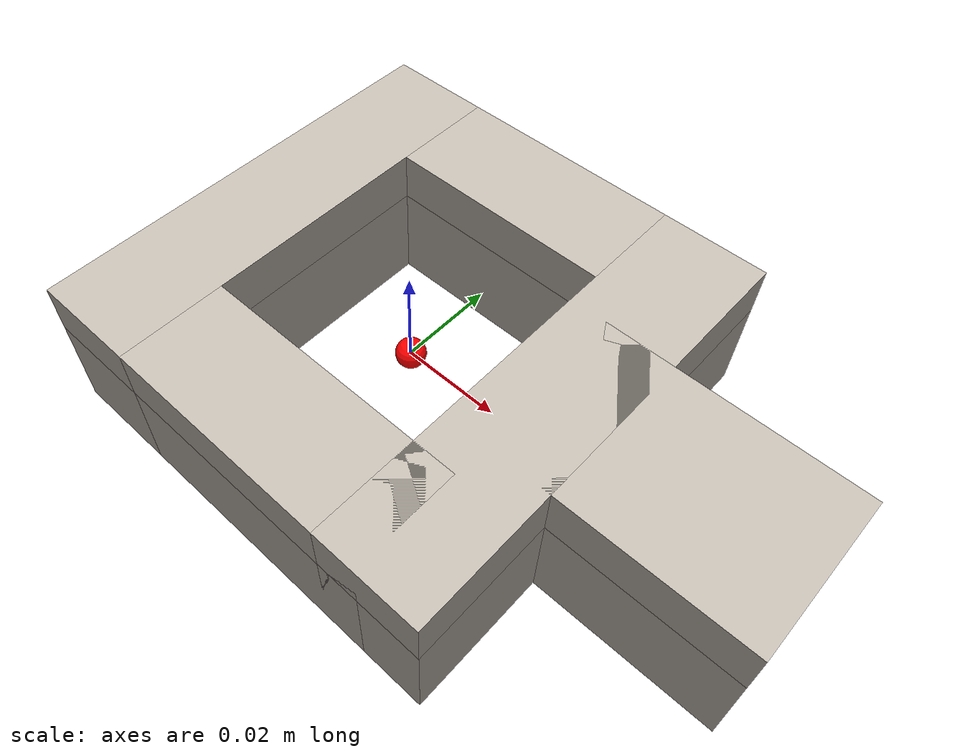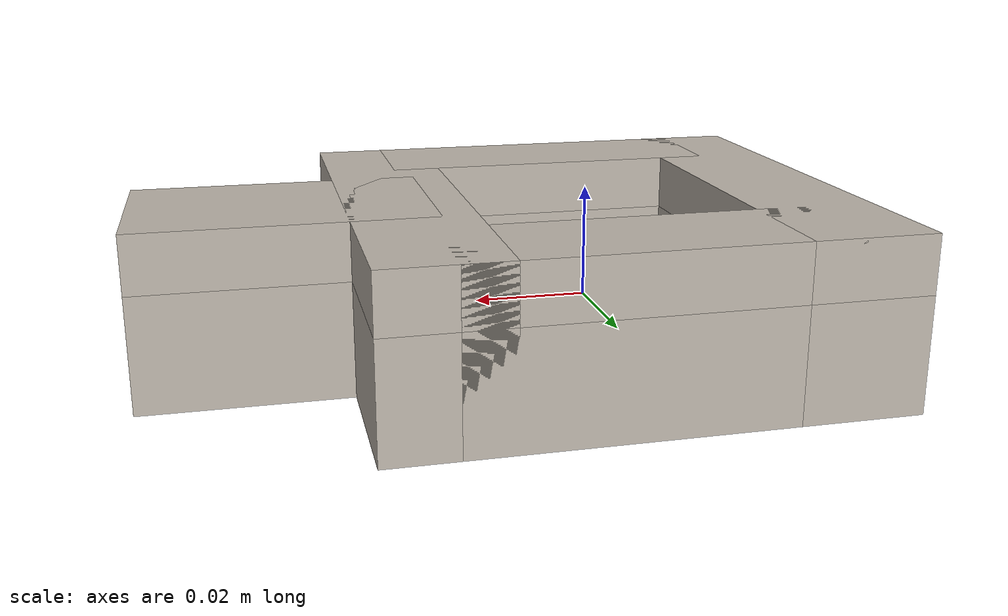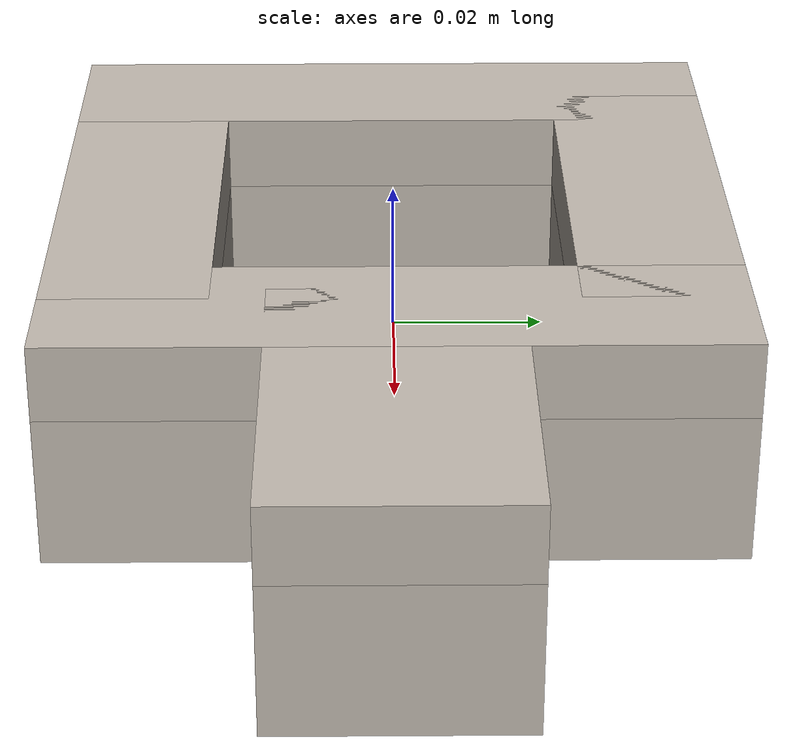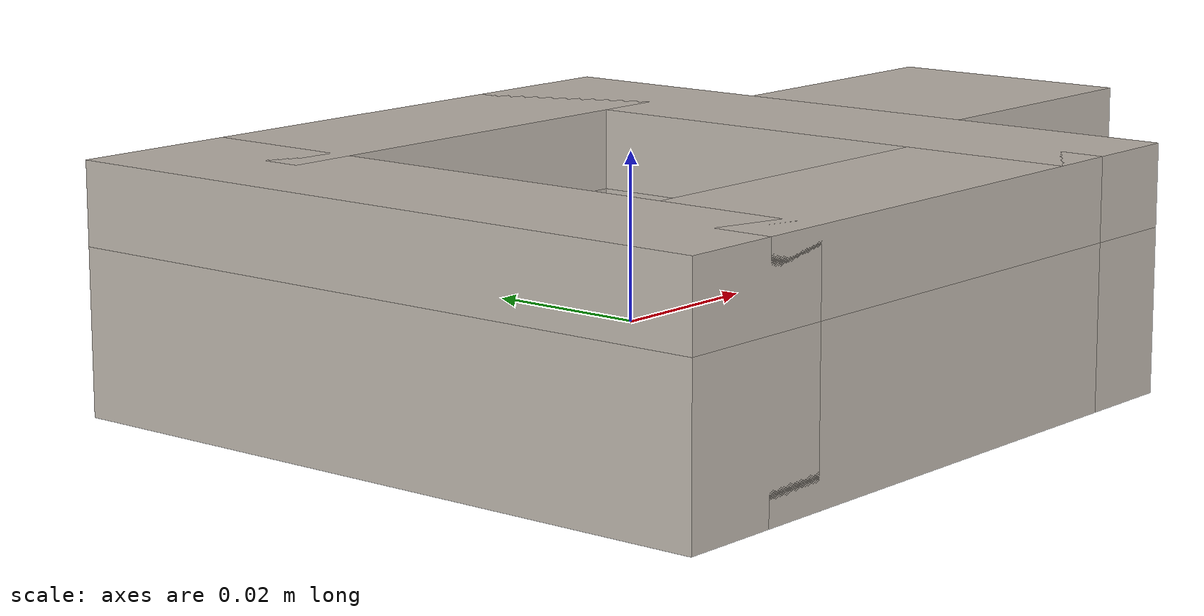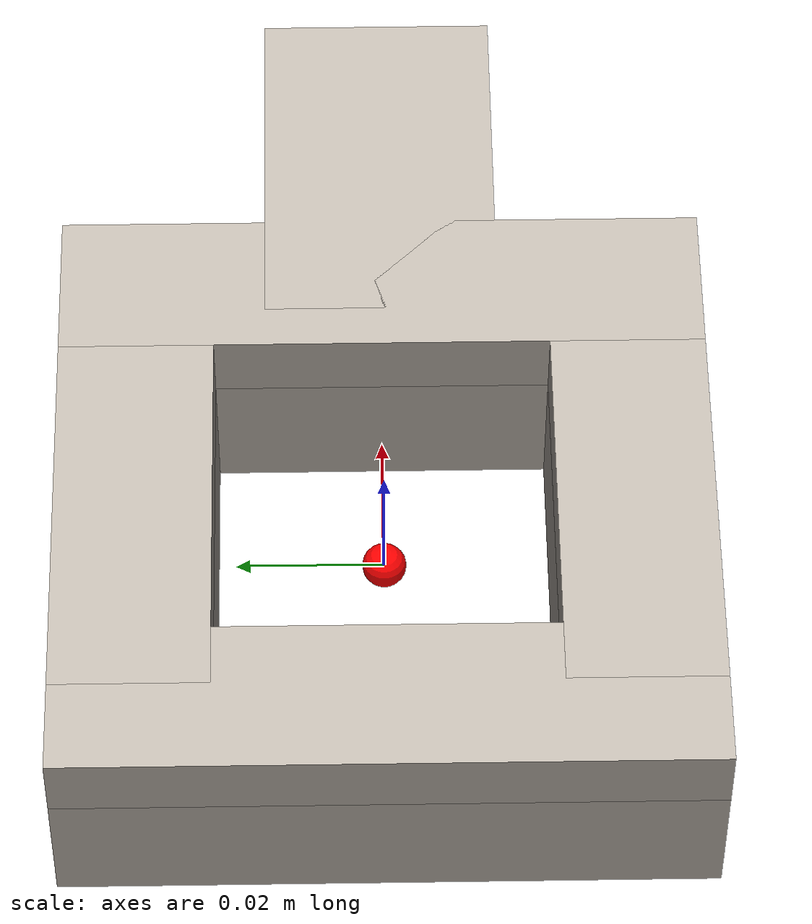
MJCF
<mujoco model="square-nut">
  <asset>
    <texture file="../textures/brass-ambra.png" type="cube" name="brass-metal"/>
    <material name="bmetal"  reflectance="1.0" shininess="1.0" specular="1.0" texrepeat="1 1" texture="brass-metal" texuniform="true"/>
  </asset>
  <worldbody>
    <body>
      <body name="object">
        <geom pos="-0.03325 0 0" size="0.0105 0.04375 0.01" type="box" solimp="0.998 0.998 0.001" solref="0.02 1" density="100" friction="0.95 0.3 0.2" group="0" condim="4" material="bmetal" />
        <geom pos="0.0 0.03325 0" size="0.03125 0.0105 0.01" type="box" solimp="0.998 0.998 0.001" solref="0.02 1" density="100" friction="0.95 0.3 0.1" group="0" condim="4" material="bmetal" />
        <geom pos="0.0 -0.03325 0" size="0.03125 0.0105 0.01" type="box" solimp="0.998 0.998 0.001" solref="0.02 1" density="100" friction="0.95 0.3 0.1" group="0" condim="4" material="bmetal" />
        <geom pos="0.03325 0 0" size="0.0105 0.04375 0.01" type="box" solimp="0.998 0.998 0.001" solref="0.02 1" density="100" friction="0.95 0.3 0.1" group="0" condim="4" material="bmetal" />
        <geom pos="0.054 0 0" size="0.02525 0.015875 0.01" type="box" solimp="0.998 0.998 0.001" solref="0.02 1" density="100" friction="0.95 0.3 0.1" group="0" condim="4" material="bmetal" />
        <geom pos="-0.03325 0 0.015" size="0.0105 0.04375 0.005" type="box" solimp="0.998 0.998 0.001" solref="0.02 1" density="100" friction="0.95 0.3 0.2" group="0" condim="4" material="bmetal" />
        <geom pos="0.0 0.03325 0.015" size="0.03125 0.0105 0.005" type="box" solimp="0.998 0.998 0.001" solref="0.02 1" density="100" friction="0.95 0.3 0.1" group="0" condim="4" material="bmetal" />
        <geom pos="0.0 -0.03325 0.015" size="0.03125 0.0105 0.005" type="box" solimp="0.998 0.998 0.001" solref="0.02 1" density="100" friction="0.95 0.3 0.1" group="0" condim="4" material="bmetal" />
        <geom pos="0.03325 0 0.015" size="0.0105 0.04375 0.005" type="box" solimp="0.998 0.998 0.001" solref="0.02 1" density="100" friction="0.95 0.3 0.1" group="0" condim="4" material="bmetal" />
        <geom pos="0.054 0 0.015" size="0.02525 0.015875 0.005" type="box" solimp="0.998 0.998 0.001" solref="0.02 1" density="100" friction="0.95 0.3 0.1" group="0" condim="4" material="bmetal" />
        <site rgba="1 0 0 1" size="0.005" pos="0.054 0 0" name="handle_site"/>
        <site rgba="1 0 0 1" size="0.003" pos="0 0 0" name="center_site"/>
      </body>
      <site rgba="0 0 0 0" size="0.005" pos="0 0 -0.05" name="bottom_site"/>
      <site rgba="0 0 0 0" size="0.005" pos="0 0 0.01" name="top_site"/>
      <site rgba="0 0 0 0" size="0.005" pos="0.11 0.06 0" name="horizontal_radius_site"/>
    </body>
  </worldbody>
</mujoco>
